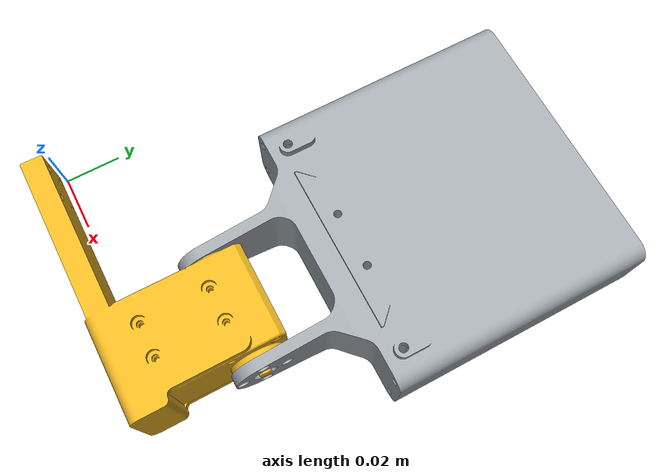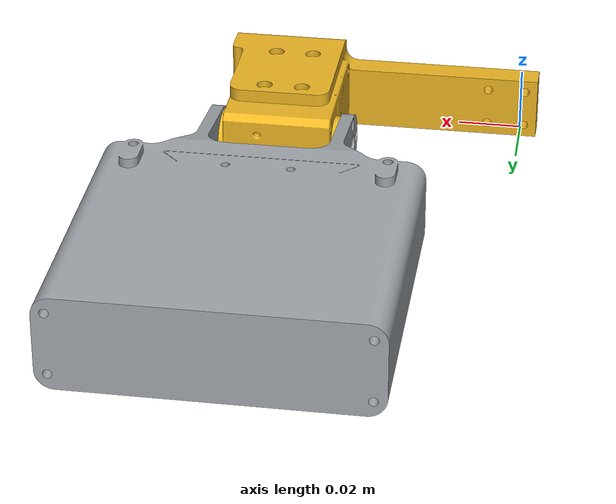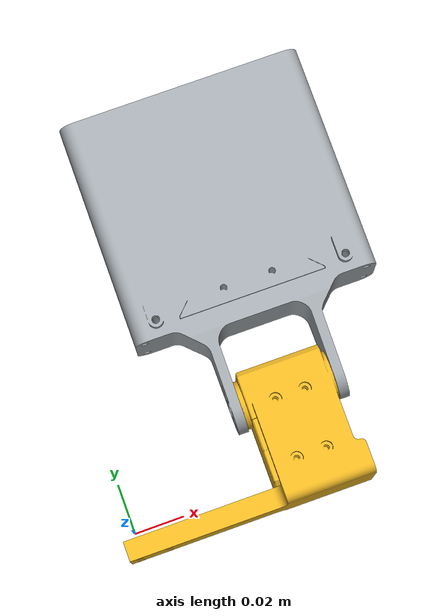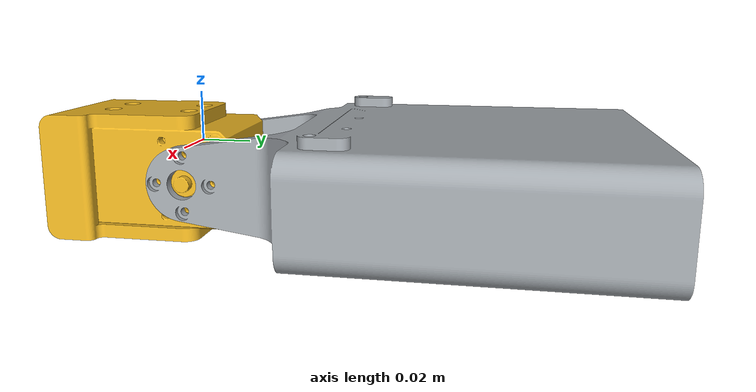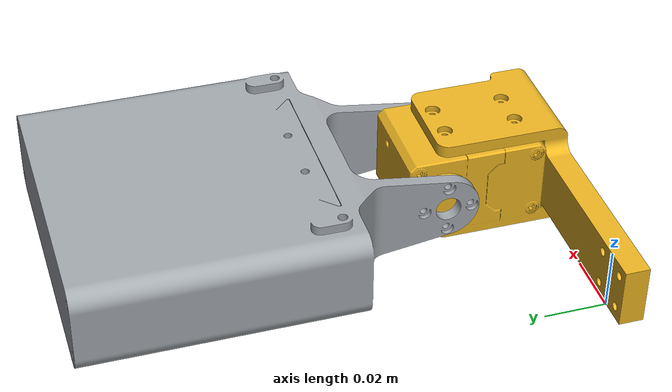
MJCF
<?xml version="1.0" ?>
<mujoco model="sysID_XM430-W210_fixed_scene">
  <include file="sysID_XM430-W210_fixed.xml"/>
  <statistic center="0 0 -0.05" extent="0.6"/>
  <visual>
    <headlight diffuse="0.6 0.6 0.6" ambient="0.3 0.3 0.3" specular="0 0 0"/>
    <rgba haze="0.15 0.25 0.35 1"/>
    <global azimuth="160" elevation="-20" offwidth="1280" offheight="720"/>
  </visual>
  <worldbody>
    <light pos="0 0 1.5" dir="0 0 -1" directional="true"/>
    <camera name="perspective" pos="0.7 -0.7 0.35" xyaxes="1 1 0 -1 1 3" mode="trackcom"/>
    <camera name="side" pos="0 -1 0.25" xyaxes="1 0 0 0 1 3" mode="trackcom"/>
    <camera name="top" pos="0 0 0.65" xyaxes="0 1 0 -1 0 0" mode="trackcom"/>
    <camera name="front" pos="1 0 0.25" xyaxes="0 1 0 -1 0 3" mode="trackcom"/>
  </worldbody>
</mujoco>

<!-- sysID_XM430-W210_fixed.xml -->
<mujoco model="sysID_XM430-W210">
  <compiler angle="radian" autolimits="true"/>
  <asset>
    <mesh name="xm430_visual" file="../assemblies/sysID_XM430-W210/meshes/xm430_visual.stl"/>
    <mesh name="arm_430_visual" file="../assemblies/sysID_XM430-W210/meshes/arm_430_visual.stl"/>
  </asset>
  <worldbody>
    <geom type="mesh" rgba="0.91426 0.700008 0.130248 1" mesh="xm430_visual" class="visual"/>
    <body name="arm_430" pos="0.093 0.0326999 0.0055694" quat="0.5 -0.5 0.5 -0.5">
      <inertial pos="-0.0777904 -1.36379e-05 -0.019" quat="0.707306 0 0 0.706907" mass="0.2555" diaginertia="0.000410739 0.000244261 0.000220842"/>
      <joint name="joint_0" pos="0 0 0" axis="0 0 1" range="-1.5708 1.5708" damping="0.071" armature="0.0042" frictionloss="0.1"/>
      <geom type="mesh" rgba="0.630593 0.65299 0.674189 1" mesh="arm_430_visual" class="visual"/>
    </body>
  </worldbody>
  <option>
    <flag eulerdamp="disable"/>
  </option>
  <equality/>
  <contact/>
  <actuator>
    <motor name="joint_0" joint="joint_0" class="XM430-W210"/>
  </actuator>
  <default>
    <default class="visual">
      <geom type="mesh" contype="0" conaffinity="0" group="2"/>
    </default>
    <default class="collision">
      <geom group="3"/>
    </default>
    <default class="XM430-W210">
      <motor ctrlrange="-3 3"/>
    </default>
  </default>
</mujoco>
